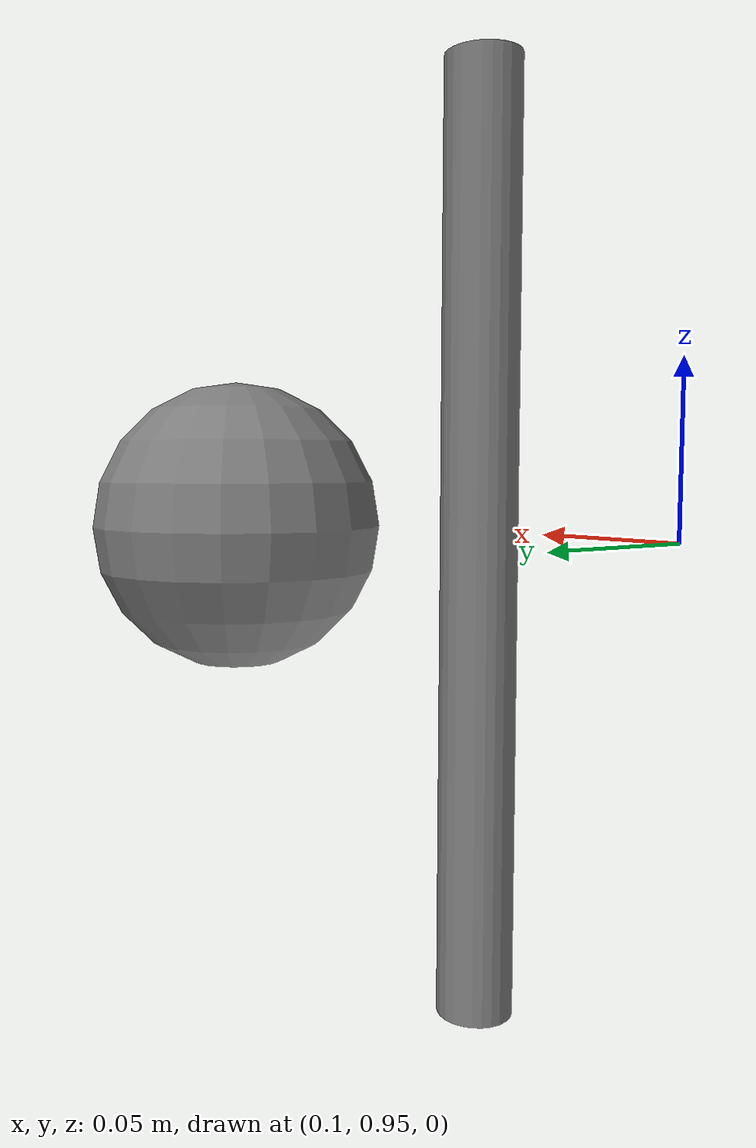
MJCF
<mujoco model="pendulum">
  <option gravity="0 -9.81 0" integrator="RK4"/>
  <worldbody>
    <light diffuse=".5 .5 .5" pos="0 0 3" dir="0 0 -1"/>
    <body name="pendulum_body" pos="0 1 0">
      <joint name="hinge" type="hinge" axis="0 0 1" damping="0" frictionloss="0"/>
      <geom name="rod" type="cylinder" size="0.01 0.12425" pos="0.12425 0 0" mass="0" contype="0" conaffinity="0"/>
      <body name="bob" pos="0.2485 0 0">
        <geom name="bob_geom" type="sphere" size="0.05" mass="1.0"/>
      </body>
    </body>
  </worldbody>
</mujoco>
